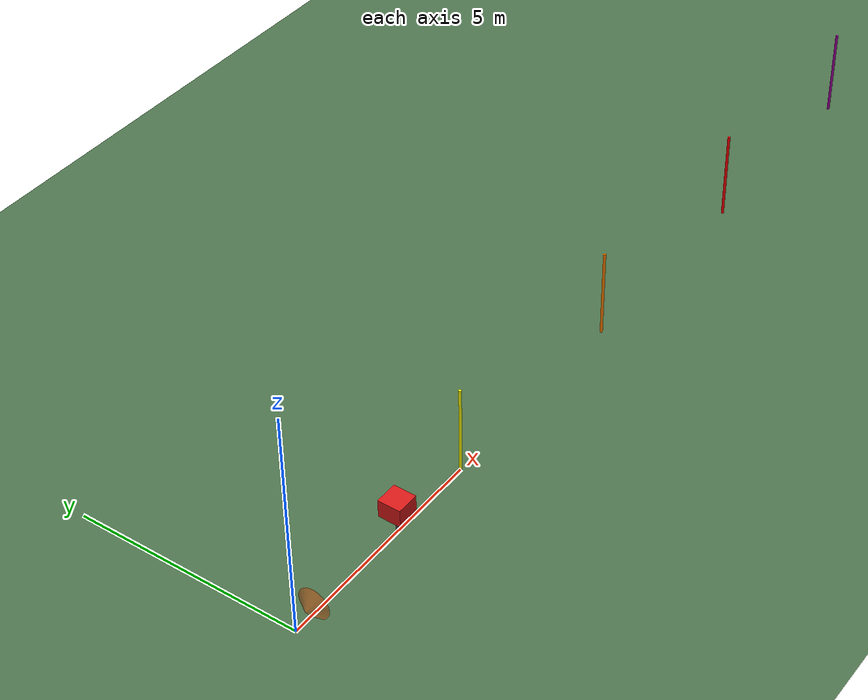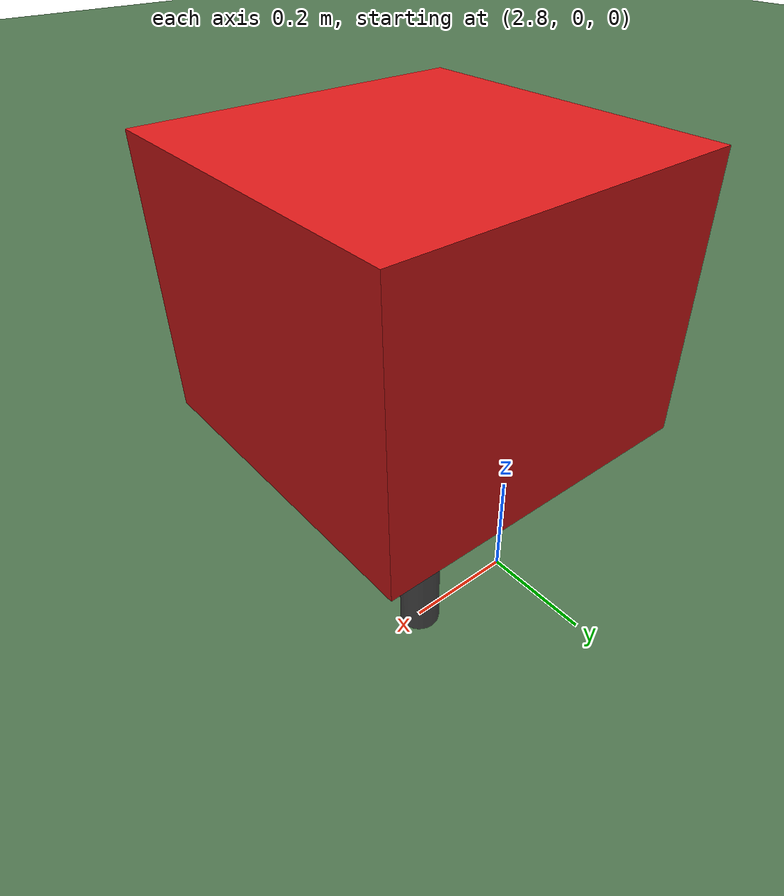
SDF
<sdf version="1.9">
 <world name="net_test">
  <physics name="1ms" type="ignore">
   <max_step_size>0.001</max_step_size>
   <real_time_factor>1.0</real_time_factor>
  </physics>
  <plugin filename="gz-sim-physics-system" name="gz::sim::systems::Physics"/>
  <plugin filename="gz-sim-user-commands-system" name="gz::sim::systems::UserCommands"/>
  <plugin filename="gz-sim-scene-broadcaster-system" name="gz::sim::systems::SceneBroadcaster"/>
  <plugin filename="gz-sim-imu-system" name="gz::sim::systems::Imu"/>
  <plugin filename="gz-sim-navsat-system" name="gz::sim::systems::NavSat"/>
  <plugin filename="gz-sim-sensors-system" name="gz::sim::systems::Sensors">
   <render_engine>ogre2</render_engine>
  </plugin>
  <plugin filename="gz-sim-contact-system" name="gz::sim::systems::Contact"/>
  <plugin filename="NetCapturePlugin" name="avci::NetCapturePlugin">
   <net_model>net_cone</net_model>
   <net_link>net_link</net_link>
   <target_model>target_box</target_model>
   <capture_topic>/net/captured</capture_topic>
   <min_speed>1.0</min_speed>
  </plugin>
  <gravity>0 0 -9.8</gravity>
  <magnetic_field>6.0e-6 2.3e-5 -4.2e-5</magnetic_field>
  <atmosphere type="adiabatic"/>
  <scene><ambient>0.5 0.5 0.5</ambient><background>0.6 0.7 0.9</background><shadows>false</shadows></scene>
  <light type="directional" name="sun">
   <cast_shadows>false</cast_shadows>
   <pose>0 0 10 0 0 0</pose>
   <diffuse>0.9 0.9 0.9 1</diffuse>
   <specular>0.2 0.2 0.2 1</specular>
   <direction>-0.5 0.1 -0.9</direction>
  </light>
  <model name="ground_plane">
   <static>true</static>
   <link name="link">
    <collision name="collision">
     <geometry><plane><normal>0 0 1</normal><size>500 500</size></plane></geometry>
    </collision>
    <visual name="visual">
     <geometry><plane><normal>0 0 1</normal><size>500 500</size></plane></geometry>
     <material><ambient>0.3 0.45 0.3 1</ambient><diffuse>0.3 0.45 0.3 1</diffuse></material>
    </visual>
   </link>
  </model>
  <model name="range_markers">
   <static>true</static>
   <link name="link">
    <visual name="m5">
     <pose>5 0 1 0 0 0</pose>
     <geometry><cylinder><radius>0.03</radius><length>2</length></cylinder></geometry>
     <material><ambient>1 1 0 1</ambient><diffuse>1 1 0 1</diffuse></material>
    </visual>
    <visual name="m10">
     <pose>10 0 1 0 0 0</pose>
     <geometry><cylinder><radius>0.03</radius><length>2</length></cylinder></geometry>
     <material><ambient>1 0.5 0 1</ambient><diffuse>1 0.5 0 1</diffuse></material>
    </visual>
    <visual name="m15">
     <pose>15 0 1 0 0 0</pose>
     <geometry><cylinder><radius>0.03</radius><length>2</length></cylinder></geometry>
     <material><ambient>1 0 0 1</ambient><diffuse>1 0 0 1</diffuse></material>
    </visual>
    <visual name="m20">
     <pose>20 0 1 0 0 0</pose>
     <geometry><cylinder><radius>0.03</radius><length>2</length></cylinder></geometry>
     <material><ambient>0.6 0 0.6 1</ambient><diffuse>0.6 0 0.6 1</diffuse></material>
    </visual>
   </link>
  </model>
  <include><uri>model://net_cone</uri><name>net_cone</name><pose>0.28 0 0.245 0 0 0</pose></include>
  <model name="target_pole">
   <static>true</static>
   <pose>3 0 0 0 0 0</pose>
   <link name="link">
    <collision name="collision">
     <pose>0 0 0.225 0 0 0</pose>
     <geometry><cylinder><radius>0.035</radius><length>0.45</length></cylinder></geometry>
    </collision>
    <visual name="visual">
     <pose>0 0 0.225 0 0 0</pose>
     <geometry><cylinder><radius>0.035</radius><length>0.45</length></cylinder></geometry>
     <material><ambient>0.3 0.3 0.3 1</ambient><diffuse>0.3 0.3 0.3 1</diffuse></material>
    </visual>
   </link>
  </model>
  <include><uri>model://target_box</uri><name>target_box</name><pose>3 0 0.65 0 0 0</pose></include>
  <model name="action_camera">
   <static>true</static>
   <pose>4.0 -8.0 1.9 0 0.02 1.5708</pose>
   <link name="link">
    <sensor name="cam" type="camera">
     <always_on>1</always_on>
     <update_rate>30</update_rate>
     <topic>/action/view</topic>
     <camera>
      <horizontal_fov>1.15</horizontal_fov>
      <image><width>1440</width><height>810</height><format>R8G8B8</format></image>
      <clip><near>0.05</near><far>200</far></clip>
     </camera>
    </sensor>
   </link>
  </model>
 </world>
</sdf>

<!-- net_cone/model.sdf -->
<sdf version="1.9">
  <model name="net_cone">

    <link name="net_link">
      <inertial>
        <mass>0.30</mass>
        <!-- Ince kabuk koni yaklasimi; tam dogru degil ama menzil/balistik
             icin yeterli. Agirlik merkezi agza dogru kayik. -->
        <pose>0.15 0 0 0 0 0</pose>
        <inertia>
          <ixx>0.0012</ixx>
          <ixy>0</ixy>
          <ixz>0</ixz>
          <iyy>0.0009</iyy>
          <iyz>0</iyz>
          <izz>0.0009</izz>
        </inertia>
      </inertial>

      <collision name="net_collision">
        <pose degrees="true">0.125 0 0 0 -90 0</pose>
        <geometry>
          <cone>
            <radius>0.35</radius>
            <length>0.25</length>
          </cone>
        </geometry>
        <surface>
          <contact>
            <ode>
              <!-- Ag yumusak: hedefi sekmeden yakalamali -->
              <max_vel>0.1</max_vel>
              <min_depth>0.005</min_depth>
            </ode>
          </contact>
          <friction>
            <ode>
              <mu>1.5</mu>
              <mu2>1.5</mu2>
            </ode>
          </friction>
        </surface>
      </collision>

      <visual name="net_visual">
        <pose degrees="true">0.125 0 0 0 -90 0</pose>
        <geometry>
          <cone>
            <radius>0.35</radius>
            <length>0.25</length>
          </cone>
        </geometry>
        <material>
          <ambient>0.9 0.35 0.05 0.55</ambient>
          <diffuse>0.9 0.35 0.05 0.55</diffuse>
          <specular>0.1 0.1 0.1 1</specular>
        </material>
        <transparency>0.45</transparency>
      </visual>

      <!-- Yakalama tespiti: NetCapturePlugin bu sensoru dinler -->
      <sensor name="net_contact" type="contact">
        <always_on>true</always_on>
        <!-- Fizik adimiyla ayni hiz: 20 m/s'de 200 Hz ornekleme (5 ms = 10 cm)
             30 cm'lik hedefte temasi kacirabiliyordu. -->
        <update_rate>1000</update_rate>
        <contact>
          <collision>net_collision</collision>
        </contact>
      </sensor>
    </link>

    <plugin filename="gz-sim-lift-drag-system"
      name="gz::sim::systems::LiftDrag">
      <a0>0.0</a0>
      <cla>0.0</cla>
      <cda>0.30</cda>
      <cma>0.0</cma>
      <alpha_stall>1.5708</alpha_stall>
      <cla_stall>0.0</cla_stall>
      <cda_stall>0.30</cda_stall>
      <cma_stall>0.0</cma_stall>
      <cp>0.15 0 0</cp>
      <area>0.10</area>
      <air_density>1.2041</air_density>
      <forward>1 0 0</forward>
      <upward>0 0 1</upward>
      <link_name>net_link</link_name>
    </plugin>

  </model>
</sdf>

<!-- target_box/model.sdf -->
<sdf version="1.9">
  <model name="target_box">
    <link name="target_link">
      <inertial>
        <mass>0.7</mass>
        <!-- 0.5 x 0.5 x 0.4 m kutu icin: I = m(b^2+c^2)/12 -->
        <inertia>
          <ixx>0.0240</ixx>
          <ixy>0</ixy>
          <ixz>0</ixz>
          <iyy>0.0240</iyy>
          <iyz>0</iyz>
          <izz>0.0292</izz>
        </inertia>
      </inertial>

      <collision name="target_collision">
        <geometry><box><size>0.5 0.5 0.4</size></box></geometry>
        <surface>
          <friction><ode><mu>0.8</mu><mu2>0.8</mu2></ode></friction>
        </surface>
      </collision>

      <visual name="target_visual">
        <geometry><box><size>0.5 0.5 0.4</size></box></geometry>
        <material>
          <ambient>0.85 0.1 0.1 1</ambient>
          <diffuse>0.85 0.1 0.1 1</diffuse>
        </material>
      </visual>

      <!-- Karsi taraftan da temas gorulebilsin -->
      <sensor name="target_contact" type="contact">
        <always_on>true</always_on>
        <update_rate>1000</update_rate>
        <contact><collision>target_collision</collision></contact>
      </sensor>
    </link>
  </model>
</sdf>
